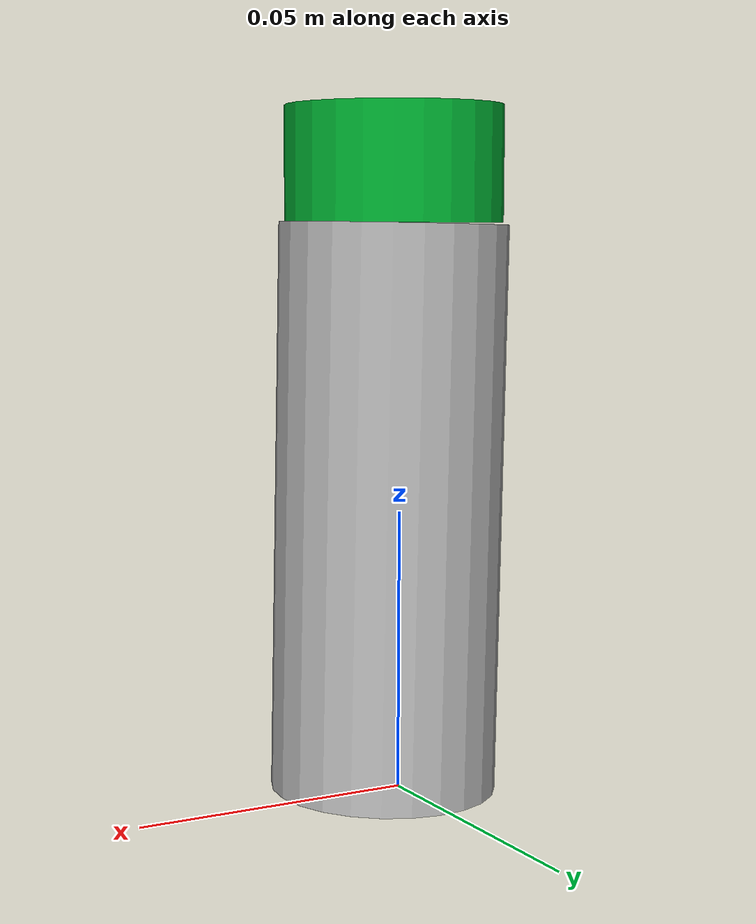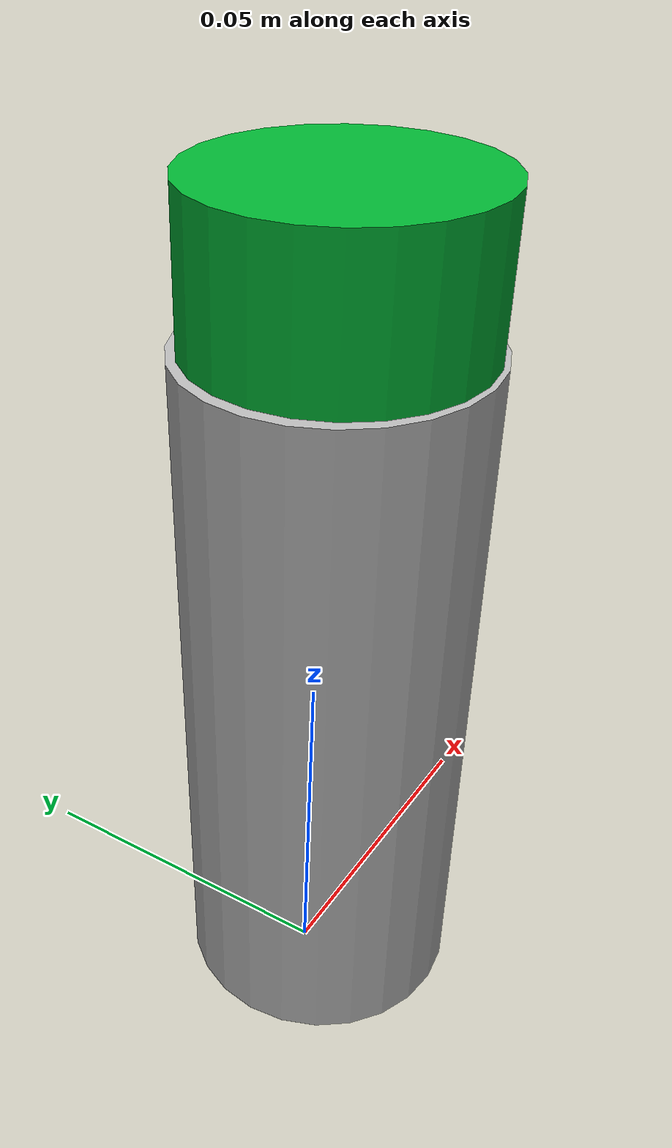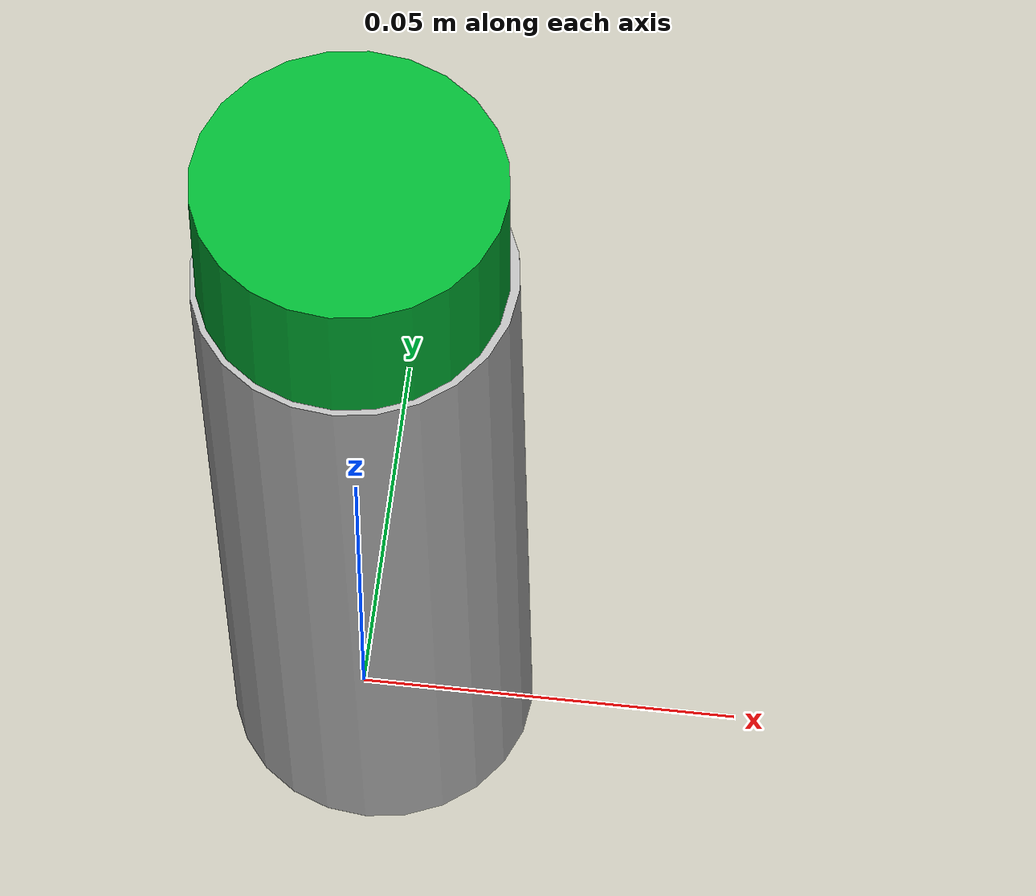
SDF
<?xml version='1.0'?>
<sdf version='1.6'>
  <model name='glue_bottle'>
    <link name='link_0'>
      <pose frame=''>0.001941 -0.000802 0.050536 0 -3.16 0</pose>
          <visual name='visual'>
        <pose frame=''>0 0 0 0 -0 0</pose>
        <geometry>
          <cylinder>
            <radius>0.02</radius>
            <length>0.1</length>
          </cylinder>
        </geometry>
          <material>
          <script>
            <uri>model://glue_bottle/materials/scripts</uri>
            <uri>model://glue_bottle/materials/textures</uri>
            <name>glue_pat</name>
          </script>
        </material>
        <transparency>0</transparency>
        <cast_shadows>1</cast_shadows>
      </visual>
      <collision name='collision'>
        <laser_retro>0</laser_retro>
        <max_contacts>10</max_contacts>
        <pose frame=''>0 0 0 0 -0 0</pose>
        <geometry>
          <cylinder>
            <radius>0.02</radius>
            <length>0.1</length>
          </cylinder>
        </geometry>
</collision>
</link>
       <link name='link_1'>
      <pose frame=''>-0.0025 0.000801 -0.016891 0 -0 0</pose>
       <visual name='visual'>
        <pose frame=''>0 0 0 0 -0 0</pose>
        <geometry>
          <mesh>
            <uri>model://glue_bottle/meshes/lid.dae</uri>
            <scale>1 1 1</scale>
          </mesh>
        </geometry>
        <material>
          <lighting>1</lighting>
            <ambient>0.0 0.8 0.2 1</ambient>
          <diffuse>0.0 0.7 0.2 1</diffuse>
          <specular>0.01 0.01 0.01 1</specular>
          <emissive>0 0 0 1</emissive>
          <shader type='vertex'>
            <normal_map>__default__</normal_map>
          </shader>
        </material>
        <transparency>0</transparency>
        <cast_shadows>1</cast_shadows>
      </visual>
      <collision name='collision'>
        <laser_retro>0</laser_retro>
        <max_contacts>10</max_contacts>
        <pose frame=''>0 0 0 0 -0 0</pose>
        <geometry>
          <mesh>
            <uri>model://glue_bottle/meshes/lid.dae</uri>
            <scale>1 1 1</scale>
          </mesh>
        </geometry>
    </collision>
</link>
    <static>1</static>
    <allow_auto_disable>1</allow_auto_disable>
  </model>
</sdf>
